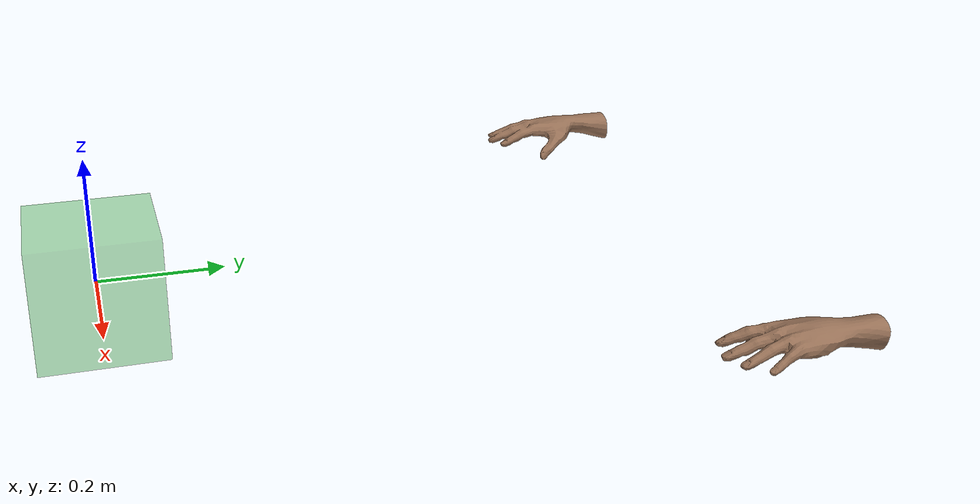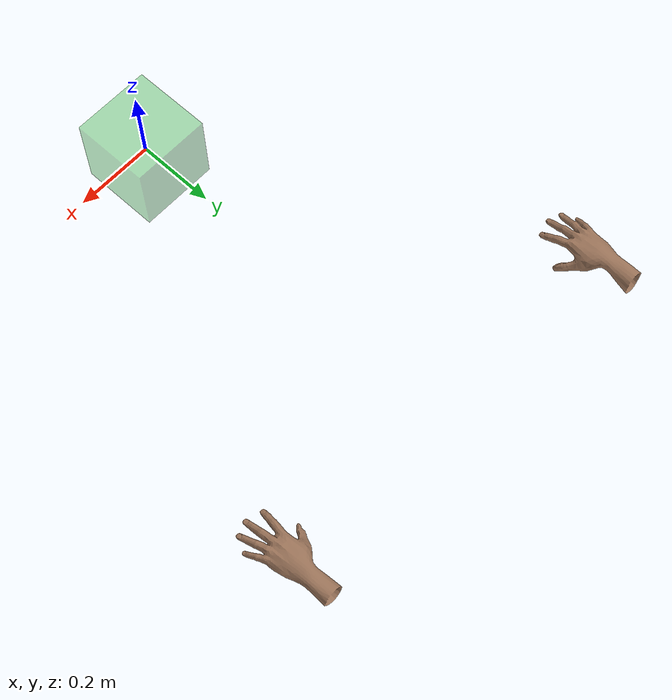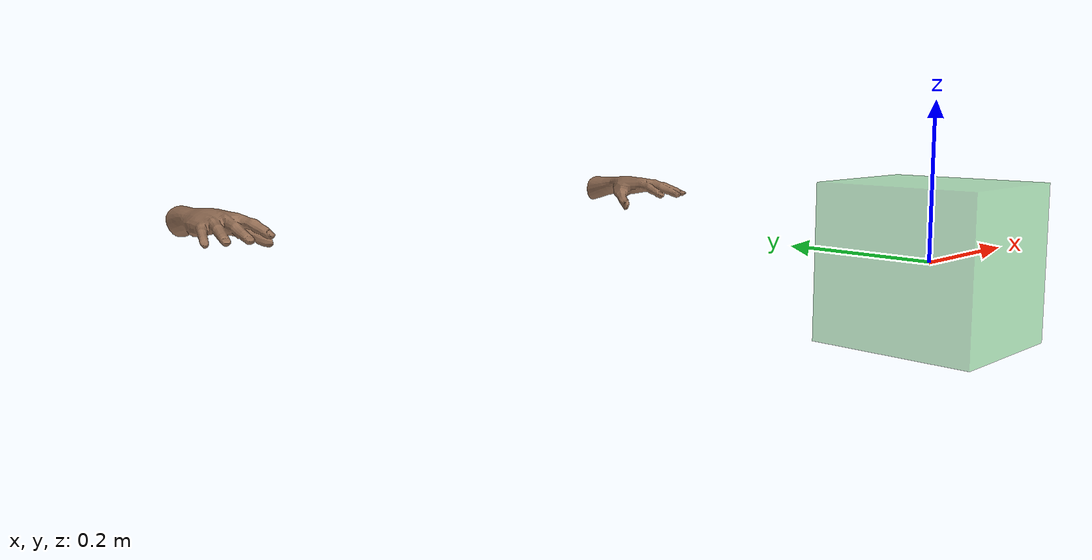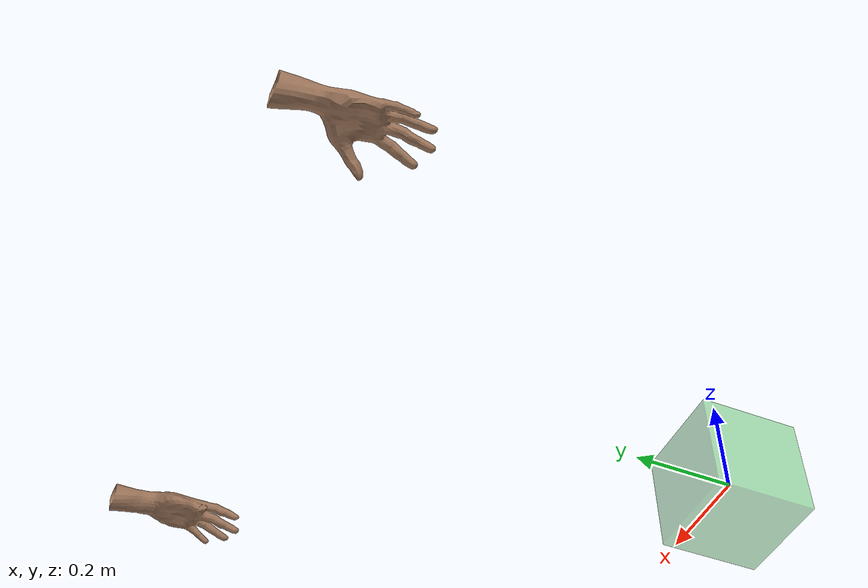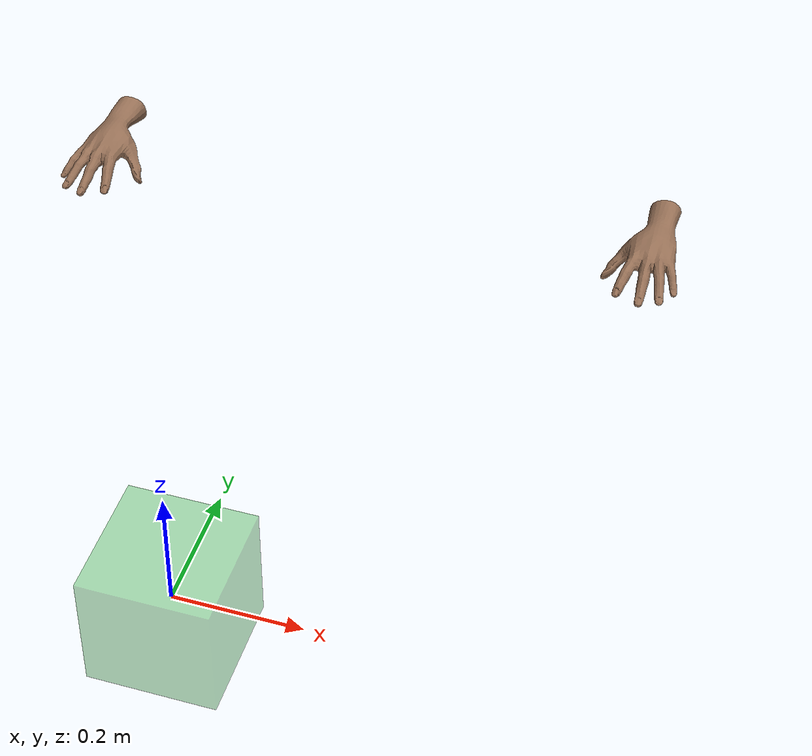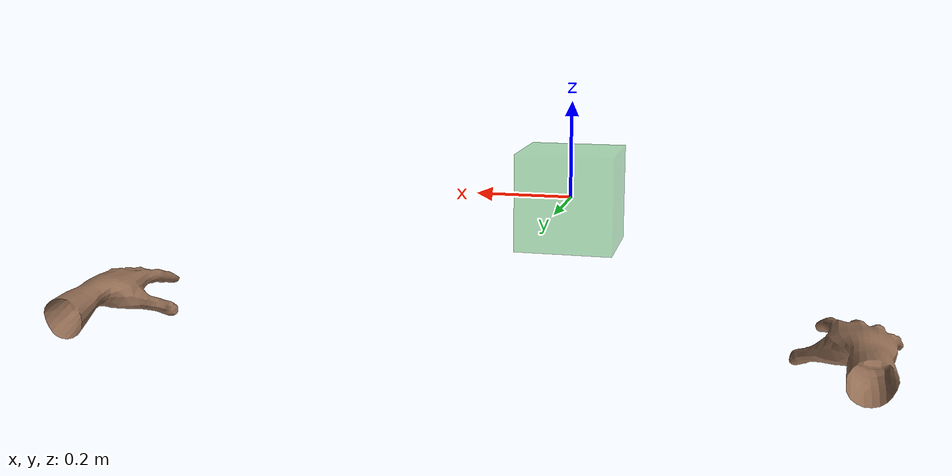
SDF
<?xml version='1.0'?>
<sdf version='1.7'>
  <model name='safety_cube'>
    <include>
      <uri>model://hands</uri>
      <pose>0 0 0 0 0 0</pose>
    </include>
    <link name='link'>
      <inertial>
        <mass>1</mass>
        <inertia>
          <ixx>0.166667</ixx>
          <ixy>0</ixy>
          <ixz>0</ixz>
          <iyy>0.166667</iyy>
          <iyz>0</iyz>
          <izz>0.166667</izz>
        </inertia>
        <pose>0 0 0 0 -0 0</pose>
      </inertial>
      <gravity>1</gravity>
      <visual name='visual'>
        <geometry>
          <box>
            <size>0.2 0.2 0.2</size>
          </box>
        </geometry>
        <material>
          <script>
            <name>Gazebo/Green</name>
            <uri>file://media/materials/scripts/gazebo.material</uri>
          </script>
          <shader type='pixel'>
            <normal_map>__default__</normal_map>
          </shader>
          <ambient>0 1 0 1</ambient>
          <diffuse>0 1 0 1</diffuse>
          <specular>0.1 0.1 0.1 1</specular>
          <emissive>0 0 0 1</emissive>
        </material>
        <pose>0 0 0 0 -0 0</pose>
        <transparency>0.6</transparency>
        <cast_shadows>1</cast_shadows>
      </visual>
    </link>
    <static>1</static>
    <allow_auto_disable>1</allow_auto_disable>
  </model>
</sdf>

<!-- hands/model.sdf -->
<sdf version="1.5">
	<model name="hands">
		<pose>0 0 1 0 0 0</pose>
		<self_collide>false</self_collide>
		<link name="right_hand">
			<gravity>0</gravity>
			<pose>-0.5 1 0 0.0 0.0 0.0</pose>
			<inertial>
				<mass>1.0</mass>
				<pose>0 0 0 0 0 0</pose>
				<inertia>
					<ixx>1.0</ixx>
					<ixy>0.0</ixy>
					<ixz>0.0</ixz>
					<iyy>1.0</iyy>
					<iyz>0.0</iyz>
					<izz>1.0</izz>
				</inertia>
			</inertial>
			<collision name="right_hand_collision">
				<pose>4.0898842298781e-05 6.227551004514857e-05 -4.773981416489651e-05 -9.920938515151079e-10 -0.0 0.0</pose>
				<geometry>
					<mesh>
						<uri>model://hands/meshes/collision/COL_right_hand.dae</uri> <scale>0.1 0.1 0.1</scale>
					</mesh>
				</geometry>
			</collision>
			<visual name="right_hand">
				<pose>4.0898842298781e-05 6.227551004514857e-05 -4.773981416489651e-05 -9.920952948050399e-10 -0.0 0.0</pose>
				<geometry>
					<mesh>
						<uri>model://hands/meshes/visual/VIS_right_hand.dae</uri> <scale>0.1 0.1 0.1</scale>
					</mesh>
				</geometry>
			</visual>
		</link>
		<link name="left_hand">
			<gravity>0</gravity>
			<pose>0.5 1 0 0.0 0.0 0.0</pose>
			<inertial>
				<mass>1.0</mass>
				<pose>0 0 0 0 0 0</pose>
				<inertia>
					<ixx>1.0</ixx>
					<ixy>0.0</ixy>
					<ixz>0.0</ixz>
					<iyy>1.0</iyy>
					<iyz>0.0</iyz>
					<izz>1.0</izz>
				</inertia>
			</inertial>
			<collision name="left_hand_collision">
				<pose>4.0898842298781e-05 6.227551004514857e-05 -4.773981416489651e-05 -9.920938515151079e-10 -0.0 0.0</pose>
				<geometry>
					<mesh>
						<uri>model://hands/meshes/collision/COL_left_hand.dae</uri> <scale>0.1 0.1 0.1</scale>
					</mesh>
				</geometry>
			</collision>
			<visual name="left_hand">
				<pose>4.0898842298781e-05 6.227551004514857e-05 -4.773981416489651e-05 -9.920952948050399e-10 -0.0 0.0</pose>
				<geometry>
					<mesh>
						<uri>model://hands/meshes/visual/VIS_left_hand.dae</uri> <scale>0.1 0.1 0.1</scale>
					</mesh>
				</geometry>
			</visual>
		</link>
	<plugin name="ForceLinkPlugin" filename="libForceLinkPlugin.so" />
	</model>
</sdf>
